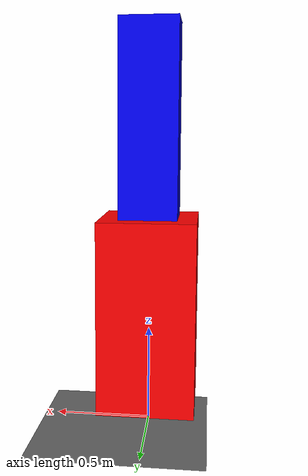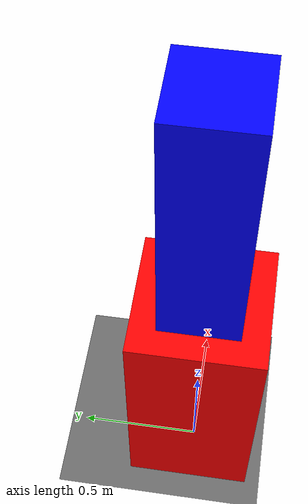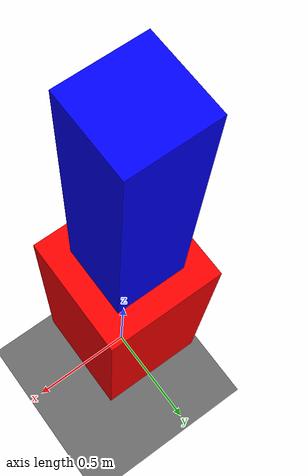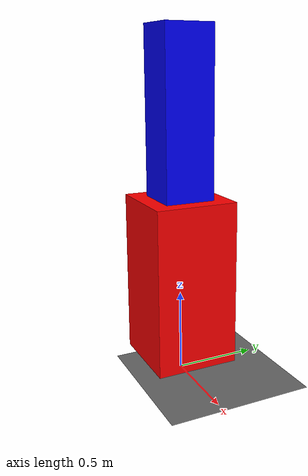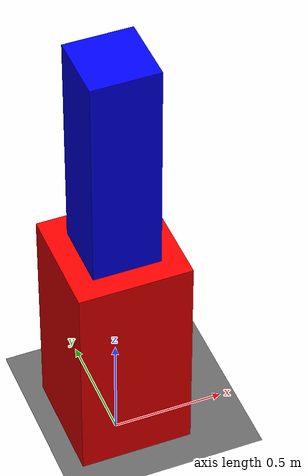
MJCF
<mujoco>
  <include file="./common/materials.xml"/>
  <option timestep="0.01"/>

  <worldbody>
    <light name="light" pos="0 0 3"/>
    <camera name="fixed" pos="0 -3 3" xyaxes="1 0 0 0 1 1"/>
    <geom name="floor" type="plane" size="5 5 0.1" pos="0 0 0" rgba="0.4 0.4 0.4 1" material="motphys-ground"/>

    <body name="base" pos="0 0 0.1">
      <body name="arm_A" pos="0 0 0">
        <joint name="joint_A" type="hinge" axis="0 0 1" limited="false"/>
        <geom name="cube_A" type="box" size="0.25 0.25 0.5" pos="0 0 0.5" rgba="1 0 0 1"/>

        <body name="arm_B" pos="0 0 1">
          <joint name="joint_B" type="hinge" axis="0 0 1" limited="false"/>
          <geom name="cube_B" type="box" size="0.15 0.15 0.5" pos="0 0 0.5" rgba="0 0 1 1"/>
        </body>
      </body>
    </body>
  </worldbody>
</mujoco>

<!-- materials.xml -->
<!--
Common textures, colors and materials to be used throughout this suite. Some
materials such as xxx_highlight are activated on occurence of certain events,
for example receiving a positive reward.
-->
<mujoco>
  <asset>
    <texture name="motphys-ground" type="2d" file="motphys-ground.png" />
    <material name="motphys-ground" texture="motphys-ground" texuniform="true"
      texrepeat="0.4 0.4" />
  </asset>
</mujoco>
